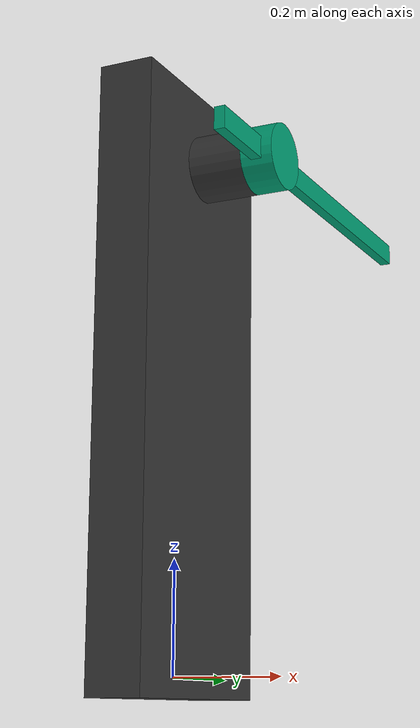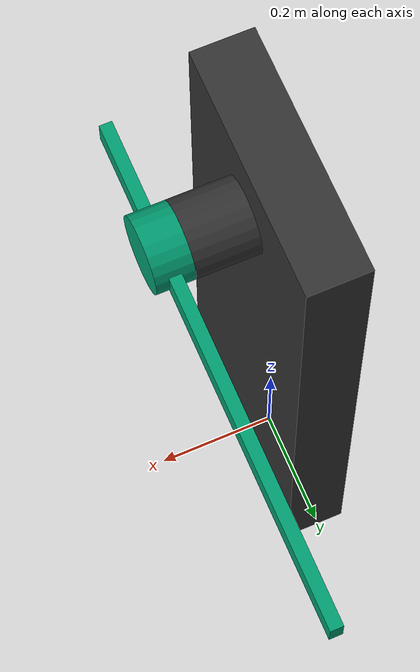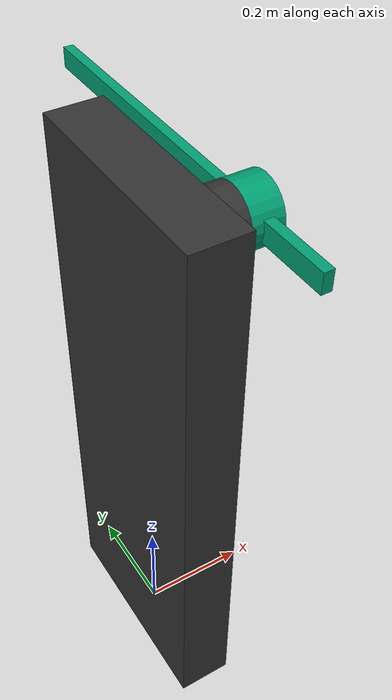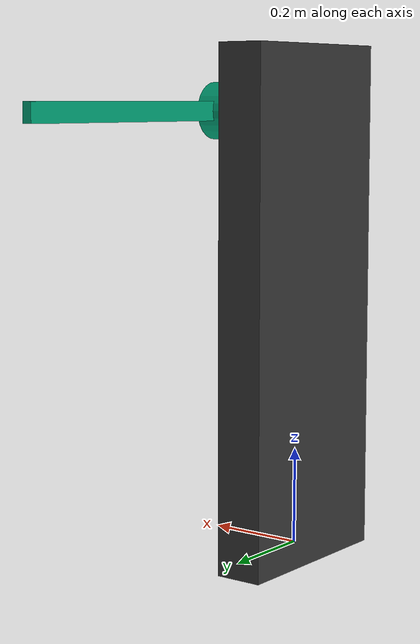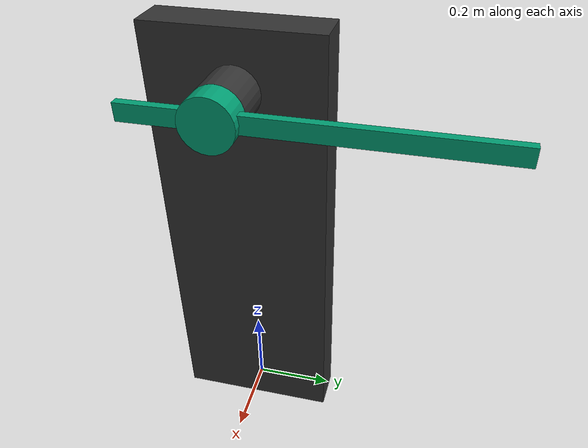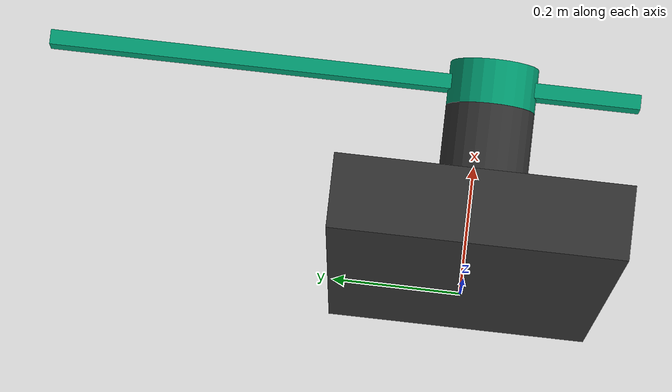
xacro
<?xml version="1.0"?>
<robot name="sark"
       xmlns:sensor="http://playerstage.sourceforge.net/gazebo/xmlschema/#sensor"
       xmlns:controller="http://playerstage.sourceforge.net/gazebo/xmlschema/#controller"
       xmlns:xacro="http://ros.org/wiki/fixme"
       xmlns:interface="http://playerstage.sourceforge.net/gazebo/xmlschema/#interface">

  <xacro:property name="M_PI" value="3.14159"/>

  <link name="world">

    <collision>
      <origin xyz="0 0 0.15" rpy="0 0 0" />
      <geometry>
        <box size="0.4 0.4 0.3" />
      </geometry>
    </collision>
  </link>

  <joint name="base_joint_s" type="fixed">
    <origin rpy="0 0 0.0" xyz="0.0 0.0 0.0"/>
    <parent link="world"/>
    <child link="sark_base"/>
  </joint>

  <link name="sark_base">
    <inertial>
      <mass value="0" />
      <origin xyz="-0.0 0.0 0.0" />
      <inertia ixx="1.0" ixy="0.0" ixz="0.0"
               iyy="1.0" iyz="0.0"
               izz="1.0" />
    </inertial>

    <collision>
      <origin xyz="0 0 0.5" rpy="0 0 0" />
      <geometry>
        <box size="0.2 0.4 1.0" />
      </geometry>
    </collision>
    <visual>
      <origin xyz="0 0 0.5" />
      <geometry>
        <box size="0.1 0.4 1.07" />
      </geometry>
      <material name="gray">
      <color rgba=".2 .2 .2 1" />
    </material>
    </visual>
    <visual>
      <origin rpy="0 1.57 0" xyz="0.09 0.0 0.90"/>
      <geometry>
         <cylinder radius="0.06" length="0.12"/>
      </geometry>
      <material name="gray">
      <color rgba=".2 .2 .2 1" />
    </material>
    </visual>
  </link>

  <joint name="SarkofagJoint" type="revolute">
    <origin rpy="-1.57 0 0" xyz="0.0 0.0 0.90"/>
    <axis xyz="1 0 0"/>
    <limit lower="-2.96705973" upper="2.96705973" effort="10.0" velocity="10.0" />
    <parent link="sark_base"/>
    <child link="sark_1"/>
  </joint>

  <link name="sark_1">
    <inertial>
      <mass value="0.1"/>
      <origin xyz="0.0 0.0 0.0"/>
      <inertia ixx="0.1" ixy="0" ixz="0" iyy="0.1" iyz="0" izz="0.1"/>
    </inertial>
    <visual>
      <origin rpy="-1.57 0 0.0" xyz="0.18 0.0 0.2"/>
      <geometry>
        <box size="0.02 0.8 0.04" />
      </geometry>
    </visual>
    <visual>
      <origin rpy="0 1.57 0" xyz="0.18 0.0 0.0"/>
      <geometry>
         <cylinder radius="0.06" length="0.06"/>
      </geometry>
    </visual>
    <collision>
      <origin rpy="-1.57 0 0.0" xyz="0.18 0 0.2"/>
      <geometry>
        <box size="0.02 0.8 0.04" />
      </geometry>
    </collision>
  </link>

</robot>
